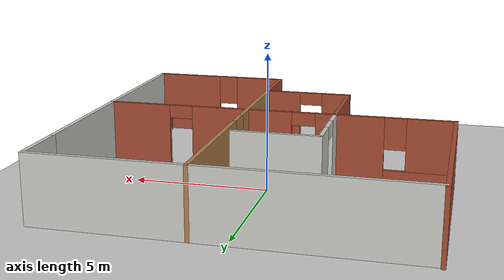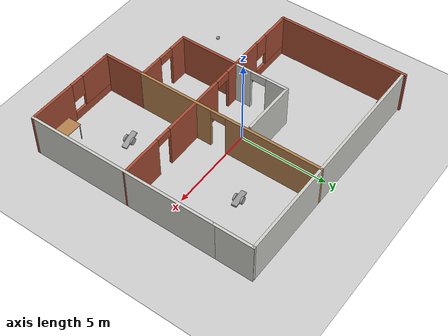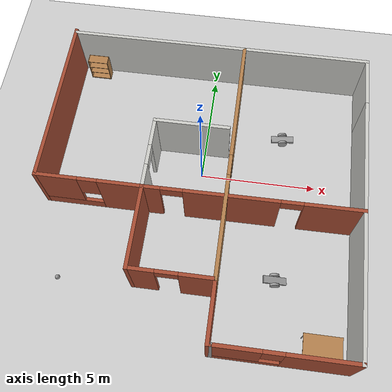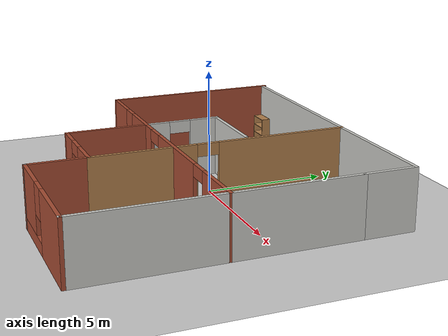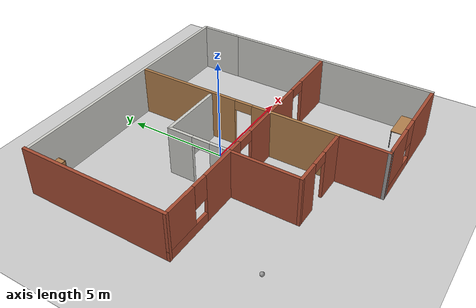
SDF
<sdf version="1.6">
 <world name="default">
  <plugin name="hello" filename="libhello.so"/>
  <light name="sun" type="directional">
   <pose>0 0 10 0 -0 0</pose>
   <diffuse>0.8 0.8 0.8 1</diffuse>
   <specular>0.2 0.2 0.2 1</specular>
   <attenuation>
    <range>1000</range>
    <constant>0.9</constant>
    <linear>0.01</linear>
    <quadratic>0.001</quadratic>
   </attenuation>
   <direction>-0.5 0.1 -0.9</direction>
  </light>
  <model name="ground_plane">
   <static>1</static>
   <link name="link">
    <collision name="collision">
     <geometry><plane><normal>0 0 1</normal><size>100 100</size></plane></geometry>
     <surface>
      <contact><collide_bitmask>65535</collide_bitmask></contact>
      <friction><ode><mu>100</mu><mu2>50</mu2></ode></friction>
     </surface>
    </collision>
    <visual name="visual">
     <cast_shadows>0</cast_shadows>
     <geometry><plane><normal>0 0 1</normal><size>100 100</size></plane></geometry>
     <material>
      <script><uri>file://media/materials/scripts/gazebo.material</uri><name>Gazebo/Grey</name></script>
     </material>
    </visual>
   </link>
  </model>
  <gravity>0 0 -9.8</gravity>
  <magnetic_field>6e-06 2.3e-05 -4.2e-05</magnetic_field>
  <atmosphere type="adiabatic"/>
  <physics name="default_physics" default="0" type="ode">
   <max_step_size>0.001</max_step_size>
   <real_time_factor>1</real_time_factor>
   <real_time_update_rate>1000</real_time_update_rate>
  </physics>
  <scene><ambient>0.4 0.4 0.4 1</ambient><background>0.7 0.7 0.7 1</background><shadows>1</shadows></scene>
  <spherical_coordinates>
   <surface_model>EARTH_WGS84</surface_model>
   <latitude_deg>0</latitude_deg>
   <longitude_deg>0</longitude_deg>
   <elevation>0</elevation>
   <heading_deg>0</heading_deg>
  </spherical_coordinates>
  <model name="Building">
   <pose>0.114366 -1.10553 0 0 -0 0</pose>
   <link name="Wall_0">
    <collision name="Wall_0_Collision">
     <geometry><box><size>13.25 0.15 2.5</size></box></geometry>
     <pose>0 0 1.25 0 -0 0</pose>
    </collision>
    <visual name="Wall_0_Visual">
     <pose>0 0 1.25 0 -0 0</pose>
     <geometry><box><size>13.25 0.15 2.5</size></box></geometry>
     <material>
      <script><uri>file://media/materials/scripts/gazebo.material</uri><name>Gazebo/CeilingTiled</name></script>
      <ambient>0.435294 0.796078 0.67451 1</ambient>
     </material>
     <meta><layer>0</layer></meta>
    </visual>
    <pose>0.024727 6.425 0 0 -0 0</pose>
   </link>
   <link name="Wall_1">
    <collision name="Wall_1_Collision">
     <geometry><box><size>2.25 0.15 2.5</size></box></geometry>
     <pose>0 0 1.25 0 -0 0</pose>
    </collision>
    <visual name="Wall_1_Visual">
     <pose>0 0 1.25 0 -0 0</pose>
     <geometry><box><size>2.25 0.15 2.5</size></box></geometry>
     <material>
      <script><uri>file://media/materials/scripts/gazebo.material</uri><name>Gazebo/CeilingTiled</name></script>
      <ambient>0.760784 0.662745 0.627451 1</ambient>
     </material>
     <meta><layer>0</layer></meta>
    </visual>
    <pose>6.57473 5.375 0 0 0 -1.5708</pose>
   </link>
   <link name="Wall_11">
    <pose>2.17478 -0.799463 0 0 0 -3.13579</pose>
    <visual name="Wall_11_Visual_0">
     <pose>-3.24354 0 1.25 0 -0 0</pose>
     <geometry><box><size>2.46318 0.15 2.5</size></box></geometry>
     <material>
      <script><uri>file://media/materials/scripts/gazebo.material</uri><name>Gazebo/Bricks</name></script>
      <ambient>1 1 1 1</ambient>
     </material>
     <meta><layer>0</layer></meta>
    </visual>
    <collision name="Wall_11_Collision_0">
     <geometry><box><size>2.46318 0.15 2.5</size></box></geometry>
     <pose>-3.24354 0 1.25 0 -0 0</pose>
    </collision>
    <visual name="Wall_11_Visual_1">
     <pose>0.828788 0 1.25 0 -0 0</pose>
     <geometry><box><size>3.88147 0.15 2.5</size></box></geometry>
     <material>
      <script><uri>file://media/materials/scripts/gazebo.material</uri><name>Gazebo/Bricks</name></script>
      <ambient>1 1 1 1</ambient>
     </material>
     <meta><layer>0</layer></meta>
    </visual>
    <collision name="Wall_11_Collision_1">
     <geometry><box><size>3.88147 0.15 2.5</size></box></geometry>
     <pose>0.828788 0 1.25 0 -0 0</pose>
    </collision>
    <visual name="Wall_11_Visual_2">
     <pose>4.07233 0 1.25 0 -0 0</pose>
     <geometry><box><size>0.805607 0.15 2.5</size></box></geometry>
     <material>
      <script><uri>file://media/materials/scripts/gazebo.material</uri><name>Gazebo/Bricks</name></script>
      <ambient>1 1 1 1</ambient>
     </material>
     <meta><layer>0</layer></meta>
    </visual>
    <collision name="Wall_11_Collision_2">
     <geometry><box><size>0.805607 0.15 2.5</size></box></geometry>
     <pose>4.07233 0 1.25 0 -0 0</pose>
    </collision>
    <visual name="Wall_11_Visual_3">
     <pose>-1.56195 0 2.25 0 -0 0</pose>
     <geometry><box><size>0.9 0.15 0.5</size></box></geometry>
     <material>
      <script><uri>file://media/materials/scripts/gazebo.material</uri><name>Gazebo/Bricks</name></script>
      <ambient>1 1 1 1</ambient>
     </material>
     <meta><layer>0</layer></meta>
    </visual>
    <collision name="Wall_11_Collision_3">
     <geometry><box><size>0.9 0.15 0.5</size></box></geometry>
     <pose>-1.56195 0 2.25 0 -0 0</pose>
    </collision>
    <visual name="Wall_11_Visual_4">
     <pose>3.21952 0 2.25 0 -0 0</pose>
     <geometry><box><size>0.9 0.15 0.5</size></box></geometry>
     <material>
      <script><uri>file://media/materials/scripts/gazebo.material</uri><name>Gazebo/Bricks</name></script>
      <ambient>1 1 1 1</ambient>
     </material>
     <meta><layer>0</layer></meta>
    </visual>
    <collision name="Wall_11_Collision_4">
     <geometry><box><size>0.9 0.15 0.5</size></box></geometry>
     <pose>3.21952 0 2.25 0 -0 0</pose>
    </collision>
   </link>
   <link name="Wall_12">
    <pose>-2.22527 0.725 0 0 -0 1.5708</pose>
    <visual name="Wall_12_Visual_0">
     <pose>-1.09587 0 1.25 0 -0 0</pose>
     <geometry><box><size>1.05826 0.15 2.5</size></box></geometry>
     <material>
      <script><uri>file://media/materials/scripts/gazebo.material</uri><name>Gazebo/CeilingTiled</name></script>
      <ambient>1 1 1 1</ambient>
     </material>
     <meta><layer>0</layer></meta>
    </visual>
    <collision name="Wall_12_Collision_0">
     <geometry><box><size>1.05826 0.15 2.5</size></box></geometry>
     <pose>-1.09587 0 1.25 0 -0 0</pose>
    </collision>
    <visual name="Wall_12_Visual_1">
     <pose>0.979128 0 1.25 0 -0 0</pose>
     <geometry><box><size>1.29174 0.15 2.5</size></box></geometry>
     <material>
      <script><uri>file://media/materials/scripts/gazebo.material</uri><name>Gazebo/CeilingTiled</name></script>
      <ambient>1 1 1 1</ambient>
     </material>
     <meta><layer>0</layer></meta>
    </visual>
    <collision name="Wall_12_Collision_1">
     <geometry><box><size>1.29174 0.15 2.5</size></box></geometry>
     <pose>0.979128 0 1.25 0 -0 0</pose>
    </collision>
    <visual name="Wall_12_Visual_2">
     <pose>-0.116744 0 2.25 0 -0 0</pose>
     <geometry><box><size>0.9 0.15 0.5</size></box></geometry>
     <material>
      <script><uri>file://media/materials/scripts/gazebo.material</uri><name>Gazebo/CeilingTiled</name></script>
      <ambient>1 1 1 1</ambient>
     </material>
     <meta><layer>0</layer></meta>
    </visual>
    <collision name="Wall_12_Collision_2">
     <geometry><box><size>0.9 0.15 0.5</size></box></geometry>
     <pose>-0.116744 0 2.25 0 -0 0</pose>
    </collision>
   </link>
   <link name="Wall_13">
    <collision name="Wall_13_Collision">
     <geometry><box><size>3.25 0.15 2.5</size></box></geometry>
     <pose>0 0 1.25 0 -0 0</pose>
    </collision>
    <visual name="Wall_13_Visual">
     <pose>0 0 1.25 0 -0 0</pose>
     <geometry><box><size>3.25 0.15 2.5</size></box></geometry>
     <material>
      <script><uri>file://media/materials/scripts/gazebo.material</uri><name>Gazebo/CeilingTiled</name></script>
      <ambient>1 1 1 1</ambient>
     </material>
     <meta><layer>0</layer></meta>
    </visual>
    <pose>-0.675274 2.275 0 0 -0 0</pose>
   </link>
   <link name="Wall_15">
    <pose>1.12473 1.125 0 0 -0 1.5708</pose>
    <visual name="Wall_15_Visual_0">
     <pose>-3.19342 0 1.25 0 -0 0</pose>
     <geometry><box><size>4.36315 0.15 2.5</size></box></geometry>
     <material>
      <script><uri>file://media/materials/scripts/gazebo.material</uri><name>Gazebo/Wood</name></script>
      <ambient>1 1 1 1</ambient>
     </material>
     <meta><layer>0</layer></meta>
    </visual>
    <collision name="Wall_15_Collision_0">
     <geometry><box><size>4.36315 0.15 2.5</size></box></geometry>
     <pose>-3.19342 0 1.25 0 -0 0</pose>
    </collision>
    <visual name="Wall_15_Visual_1">
     <pose>2.63158 0 1.25 0 -0 0</pose>
     <geometry><box><size>5.48685 0.15 2.5</size></box></geometry>
     <material>
      <script><uri>file://media/materials/scripts/gazebo.material</uri><name>Gazebo/Wood</name></script>
      <ambient>1 1 1 1</ambient>
     </material>
     <meta><layer>0</layer></meta>
    </visual>
    <collision name="Wall_15_Collision_1">
     <geometry><box><size>5.48685 0.15 2.5</size></box></geometry>
     <pose>2.63158 0 1.25 0 -0 0</pose>
    </collision>
    <visual name="Wall_15_Visual_2">
     <pose>-0.561846 0 2.25 0 -0 0</pose>
     <geometry><box><size>0.9 0.15 0.5</size></box></geometry>
     <material>
      <script><uri>file://media/materials/scripts/gazebo.material</uri><name>Gazebo/Wood</name></script>
      <ambient>1 1 1 1</ambient>
     </material>
     <meta><layer>0</layer></meta>
    </visual>
    <collision name="Wall_15_Collision_2">
     <geometry><box><size>0.9 0.15 0.5</size></box></geometry>
     <pose>-0.561846 0 2.25 0 -0 0</pose>
    </collision>
   </link>
   <link name="Wall_2">
    <collision name="Wall_2_Collision">
     <geometry><box><size>11 0.15 2.5</size></box></geometry>
     <pose>0 0 1.25 0 -0 0</pose>
    </collision>
    <visual name="Wall_2_Visual">
     <pose>0 0 1.25 0 -0 0</pose>
     <geometry><box><size>11 0.15 2.5</size></box></geometry>
     <material>
      <script><uri>file://media/materials/scripts/gazebo.material</uri><name>Gazebo/CeilingTiled</name></script>
      <ambient>0.760784 0.662745 0.627451 1</ambient>
     </material>
     <meta><layer>0</layer></meta>
    </visual>
    <pose>6.57473 -1.1 0 0 0 -1.5708</pose>
   </link>
   <link name="Wall_3">
    <pose>3.89973 -6.525 0 0 -0 3.14159</pose>
    <visual name="Wall_3_Visual_0">
     <pose>-1.35798 0 1.25 0 -0 0</pose>
     <geometry><box><size>2.78404 0.15 2.5</size></box></geometry>
     <material>
      <script><uri>file://media/materials/scripts/gazebo.material</uri><name>Gazebo/Bricks</name></script>
      <ambient>1 1 1 1</ambient>
     </material>
     <meta><layer>0</layer></meta>
    </visual>
    <collision name="Wall_3_Collision_0">
     <geometry><box><size>2.78404 0.15 2.5</size></box></geometry>
     <pose>-1.35798 0 1.25 0 -0 0</pose>
    </collision>
    <visual name="Wall_3_Visual_1">
     <pose>1.39202 0 0.25 0 -0 0</pose>
     <geometry><box><size>2.71596 0.15 0.5</size></box></geometry>
     <material>
      <script><uri>file://media/materials/scripts/gazebo.material</uri><name>Gazebo/Bricks</name></script>
      <ambient>1 1 1 1</ambient>
     </material>
     <meta><layer>0</layer></meta>
    </visual>
    <collision name="Wall_3_Collision_1">
     <geometry><box><size>2.71596 0.15 0.5</size></box></geometry>
     <pose>1.39202 0 0.25 0 -0 0</pose>
    </collision>
    <visual name="Wall_3_Visual_2">
     <pose>1.79202 0 1.5 0 -0 0</pose>
     <geometry><box><size>1.91596 0.15 2</size></box></geometry>
     <material>
      <script><uri>file://media/materials/scripts/gazebo.material</uri><name>Gazebo/Bricks</name></script>
      <ambient>1 1 1 1</ambient>
     </material>
     <meta><layer>0</layer></meta>
    </visual>
    <collision name="Wall_3_Collision_2">
     <geometry><box><size>1.91596 0.15 2</size></box></geometry>
     <pose>1.79202 0 1.5 0 -0 0</pose>
    </collision>
    <visual name="Wall_3_Visual_3">
     <pose>0.434036 0 1.9 0 -0 0</pose>
     <geometry><box><size>0.8 0.15 1.2</size></box></geometry>
     <material>
      <script><uri>file://media/materials/scripts/gazebo.material</uri><name>Gazebo/Bricks</name></script>
      <ambient>1 1 1 1</ambient>
     </material>
     <meta><layer>0</layer></meta>
    </visual>
    <collision name="Wall_3_Collision_3">
     <geometry><box><size>0.8 0.15 1.2</size></box></geometry>
     <pose>0.434036 0 1.9 0 -0 0</pose>
    </collision>
   </link>
   <link name="Wall_4">
    <collision name="Wall_4_Collision">
     <geometry><box><size>0.25 0.15 2.5</size></box></geometry>
     <pose>0 0 1.25 0 -0 0</pose>
    </collision>
    <visual name="Wall_4_Visual">
     <pose>0 0 1.25 0 -0 0</pose>
     <geometry><box><size>0.25 0.15 2.5</size></box></geometry>
     <material>
      <script><uri>file://media/materials/scripts/gazebo.material</uri><name>Gazebo/Grey</name></script>
      <ambient>1 1 1 1</ambient>
     </material>
     <meta><layer>0</layer></meta>
    </visual>
    <pose>1.17473 -6.525 0 0 -0 3.14159</pose>
   </link>
   <link name="Wall_5">
    <collision name="Wall_5_Collision">
     <geometry><box><size>2.5 0.15 2.5</size></box></geometry>
     <pose>0 0 1.25 0 -0 0</pose>
    </collision>
    <visual name="Wall_5_Visual">
     <pose>0 0 1.25 0 -0 0</pose>
     <geometry><box><size>2.5 0.15 2.5</size></box></geometry>
     <material>
      <script><uri>file://media/materials/scripts/gazebo.material</uri><name>Gazebo/Bricks</name></script>
      <ambient>1 1 1 1</ambient>
     </material>
     <meta><layer>0</layer></meta>
    </visual>
    <pose>1.12473 -5.35 0 0 -0 1.5708</pose>
   </link>
   <link name="Wall_6">
    <pose>-0.550274 -4.175 0 0 -0 3.14159</pose>
    <visual name="Wall_6_Visual_0">
     <pose>-1.02198 0 1.25 0 -0 0</pose>
     <geometry><box><size>1.45604 0.15 2.5</size></box></geometry>
     <material>
      <script><uri>file://media/materials/scripts/gazebo.material</uri><name>Gazebo/Bricks</name></script>
      <ambient>1 1 1 1</ambient>
     </material>
     <meta><layer>0</layer></meta>
    </visual>
    <collision name="Wall_6_Collision_0">
     <geometry><box><size>1.45604 0.15 2.5</size></box></geometry>
     <pose>-1.02198 0 1.25 0 -0 0</pose>
    </collision>
    <visual name="Wall_6_Visual_1">
     <pose>1.17802 0 1.25 0 -0 0</pose>
     <geometry><box><size>1.14396 0.15 2.5</size></box></geometry>
     <material>
      <script><uri>file://media/materials/scripts/gazebo.material</uri><name>Gazebo/Bricks</name></script>
      <ambient>1 1 1 1</ambient>
     </material>
     <meta><layer>0</layer></meta>
    </visual>
    <collision name="Wall_6_Collision_1">
     <geometry><box><size>1.14396 0.15 2.5</size></box></geometry>
     <pose>1.17802 0 1.25 0 -0 0</pose>
    </collision>
    <visual name="Wall_6_Visual_2">
     <pose>0.156044 0 2.25 0 -0 0</pose>
     <geometry><box><size>0.9 0.15 0.5</size></box></geometry>
     <material>
      <script><uri>file://media/materials/scripts/gazebo.material</uri><name>Gazebo/Bricks</name></script>
      <ambient>1 1 1 1</ambient>
     </material>
     <meta><layer>0</layer></meta>
    </visual>
    <collision name="Wall_6_Collision_2">
     <geometry><box><size>0.9 0.15 0.5</size></box></geometry>
     <pose>0.156044 0 2.25 0 -0 0</pose>
    </collision>
   </link>
   <link name="Wall_7">
    <collision name="Wall_7_Collision">
     <geometry><box><size>3.5 0.15 2.5</size></box></geometry>
     <pose>0 0 1.25 0 -0 0</pose>
    </collision>
    <visual name="Wall_7_Visual">
     <pose>0 0 1.25 0 -0 0</pose>
     <geometry><box><size>3.5 0.15 2.5</size></box></geometry>
     <material>
      <script><uri>file://media/materials/scripts/gazebo.material</uri><name>Gazebo/Bricks</name></script>
      <ambient>1 1 1 1</ambient>
     </material>
     <meta><layer>0</layer></meta>
    </visual>
    <pose>-2.22527 -2.5 0 0 -0 1.5708</pose>
   </link>
   <link name="Wall_8">
    <pose>-4.40027 -0.825 0 0 -0 3.14159</pose>
    <visual name="Wall_8_Visual_0">
     <pose>-1.30021 0 1.25 0 -0 0</pose>
     <geometry><box><size>1.89958 0.15 2.5</size></box></geometry>
     <material>
      <script><uri>file://media/materials/scripts/gazebo.material</uri><name>Gazebo/Bricks</name></script>
      <ambient>1 1 1 1</ambient>
     </material>
     <meta><layer>0</layer></meta>
    </visual>
    <collision name="Wall_8_Collision_0">
     <geometry><box><size>1.89958 0.15 2.5</size></box></geometry>
     <pose>-1.30021 0 1.25 0 -0 0</pose>
    </collision>
    <visual name="Wall_8_Visual_1">
     <pose>0.949788 0 0.25 0 -0 0</pose>
     <geometry><box><size>2.60042 0.15 0.5</size></box></geometry>
     <material>
      <script><uri>file://media/materials/scripts/gazebo.material</uri><name>Gazebo/Bricks</name></script>
      <ambient>1 1 1 1</ambient>
     </material>
     <meta><layer>0</layer></meta>
    </visual>
    <collision name="Wall_8_Collision_1">
     <geometry><box><size>2.60042 0.15 0.5</size></box></geometry>
     <pose>0.949788 0 0.25 0 -0 0</pose>
    </collision>
    <visual name="Wall_8_Visual_2">
     <pose>1.34979 0 1.5 0 -0 0</pose>
     <geometry><box><size>1.80042 0.15 2</size></box></geometry>
     <material>
      <script><uri>file://media/materials/scripts/gazebo.material</uri><name>Gazebo/Bricks</name></script>
      <ambient>1 1 1 1</ambient>
     </material>
     <meta><layer>0</layer></meta>
    </visual>
    <collision name="Wall_8_Collision_2">
     <geometry><box><size>1.80042 0.15 2</size></box></geometry>
     <pose>1.34979 0 1.5 0 -0 0</pose>
    </collision>
    <visual name="Wall_8_Visual_3">
     <pose>0.049577 0 1.9 0 -0 0</pose>
     <geometry><box><size>0.8 0.15 1.2</size></box></geometry>
     <material>
      <script><uri>file://media/materials/scripts/gazebo.material</uri><name>Gazebo/Bricks</name></script>
      <ambient>1 1 1 1</ambient>
     </material>
     <meta><layer>0</layer></meta>
    </visual>
    <collision name="Wall_8_Collision_3">
     <geometry><box><size>0.8 0.15 1.2</size></box></geometry>
     <pose>0.049577 0 1.9 0 -0 0</pose>
    </collision>
   </link>
   <link name="Wall_9">
    <collision name="Wall_9_Collision">
     <geometry><box><size>7.5 0.15 2.5</size></box></geometry>
     <pose>0 0 1.25 0 -0 0</pose>
    </collision>
    <visual name="Wall_9_Visual">
     <pose>0 0 1.25 0 -0 0</pose>
     <geometry><box><size>7.5 0.15 2.5</size></box></geometry>
     <material>
      <script><uri>file://media/materials/scripts/gazebo.material</uri><name>Gazebo/Bricks</name></script>
      <ambient>1 1 1 1</ambient>
     </material>
     <meta><layer>0</layer></meta>
    </visual>
    <pose>-6.57527 2.85 0 0 -0 1.5708</pose>
   </link>
   <static>1</static>
  </model>
  <model name="MobileRobot">
   <link name="link_0">
    <pose>0 0 0 0 -0 1.5707</pose>
    <inertial>
     <mass>1</mass>
     <inertia>
      <ixx>0.166667</ixx>
      <ixy>0</ixy>
      <ixz>0</ixz>
      <iyy>0.166667</iyy>
      <iyz>0</iyz>
      <izz>0.166667</izz>
     </inertia>
    </inertial>
    <visual name="visual">
     <geometry><box><size>0.3 1 0.1</size></box></geometry>
     <material>
      <lighting>1</lighting>
      <script><uri>file://media/materials/scripts/gazebo.material</uri><name>Gazebo/Grey</name></script>
      <shader type="pixel"><normal_map>__default__</normal_map></shader>
      <ambient>0.3 0.3 0.3 1</ambient>
      <diffuse>0.7 0.7 0.7 1</diffuse>
      <specular>0.01 0.01 0.01 1</specular>
      <emissive>0 0 0 1</emissive>
     </material>
    </visual>
    <collision name="collision">
     <geometry><box><size>0.3 1 0.1</size></box></geometry>
     <surface>
      <friction>
       <ode><mu>1</mu><mu2>1</mu2><fdir1>0 0 0</fdir1><slip1>0</slip1><slip2>0</slip2></ode>
       <torsional>
        <coefficient>1</coefficient>
        <patch_radius>0</patch_radius>
        <surface_radius>0</surface_radius>
        <use_patch_radius>1</use_patch_radius>
        <ode><slip>0</slip></ode>
       </torsional>
      </friction>
      <bounce><restitution_coefficient>0</restitution_coefficient><threshold>1e+06</threshold></bounce>
      <contact>
       <collide_without_contact>0</collide_without_contact>
       <collide_without_contact_bitmask>1</collide_without_contact_bitmask>
       <collide_bitmask>1</collide_bitmask>
       <ode>
        <soft_cfm>0</soft_cfm>
        <soft_erp>0.2</soft_erp>
        <kp>1e+13</kp>
        <kd>1</kd>
        <max_vel>0.01</max_vel>
        <min_depth>0</min_depth>
       </ode>
       <bullet>
        <split_impulse>1</split_impulse>
        <split_impulse_penetration_threshold>-0.01</split_impulse_penetration_threshold>
        <soft_cfm>0</soft_cfm>
        <soft_erp>0.2</soft_erp>
        <kp>1e+13</kp>
        <kd>1</kd>
       </bullet>
      </contact>
     </surface>
    </collision>
   </link>
   <link name="link_1">
    <pose>0 -0.200068 0 1.5707 -0 0</pose>
    <inertial>
     <mass>1</mass>
     <inertia><ixx>0.145833</ixx><ixy>0</ixy><ixz>0</ixz><iyy>0.145833</iyy><iyz>0</iyz><izz>0.125</izz></inertia>
    </inertial>
    <visual name="visual">
     <geometry><cylinder><radius>0.2</radius><length>0.1</length></cylinder></geometry>
     <material>
      <lighting>1</lighting>
      <script><uri>file://media/materials/scripts/gazebo.material</uri><name>Gazebo/Grey</name></script>
      <shader type="pixel"><normal_map>__default__</normal_map></shader>
      <ambient>0.3 0.3 0.3 1</ambient>
      <diffuse>0.7 0.7 0.7 1</diffuse>
      <specular>0.01 0.01 0.01 1</specular>
      <emissive>0 0 0 1</emissive>
     </material>
    </visual>
    <collision name="collision">
     <geometry><cylinder><radius>0.2</radius><length>0.1</length></cylinder></geometry>
     <surface>
      <friction>
       <ode><mu>1</mu><mu2>1</mu2><fdir1>0 0 0</fdir1><slip1>0</slip1><slip2>0</slip2></ode>
       <torsional>
        <coefficient>1</coefficient>
        <patch_radius>0</patch_radius>
        <surface_radius>0</surface_radius>
        <use_patch_radius>1</use_patch_radius>
        <ode><slip>0</slip></ode>
       </torsional>
      </friction>
      <bounce><restitution_coefficient>0</restitution_coefficient><threshold>1e+06</threshold></bounce>
      <contact>
       <collide_without_contact>0</collide_without_contact>
       <collide_without_contact_bitmask>1</collide_without_contact_bitmask>
       <collide_bitmask>1</collide_bitmask>
       <ode>
        <soft_cfm>0</soft_cfm>
        <soft_erp>0.2</soft_erp>
        <kp>1e+13</kp>
        <kd>1</kd>
        <max_vel>0.01</max_vel>
        <min_depth>0</min_depth>
       </ode>
       <bullet>
        <split_impulse>1</split_impulse>
        <split_impulse_penetration_threshold>-0.01</split_impulse_penetration_threshold>
        <soft_cfm>0</soft_cfm>
        <soft_erp>0.2</soft_erp>
        <kp>1e+13</kp>
        <kd>1</kd>
       </bullet>
      </contact>
     </surface>
    </collision>
   </link>
   <link name="link_1_clone">
    <pose>0 0.200068 0 1.5707 -0 0</pose>
    <inertial>
     <mass>1</mass>
     <inertia><ixx>0.145833</ixx><ixy>0</ixy><ixz>0</ixz><iyy>0.145833</iyy><iyz>0</iyz><izz>0.125</izz></inertia>
    </inertial>
    <visual name="visual">
     <geometry><cylinder><radius>0.2</radius><length>0.1</length></cylinder></geometry>
     <material>
      <lighting>1</lighting>
      <script><uri>file://media/materials/scripts/gazebo.material</uri><name>Gazebo/Grey</name></script>
      <shader type="pixel"><normal_map>__default__</normal_map></shader>
      <ambient>0.3 0.3 0.3 1</ambient>
      <diffuse>0.7 0.7 0.7 1</diffuse>
      <specular>0.01 0.01 0.01 1</specular>
      <emissive>0 0 0 1</emissive>
     </material>
    </visual>
    <collision name="collision">
     <geometry><cylinder><radius>0.2</radius><length>0.1</length></cylinder></geometry>
     <surface>
      <friction>
       <ode><mu>1</mu><mu2>1</mu2><fdir1>0 0 0</fdir1><slip1>0</slip1><slip2>0</slip2></ode>
       <torsional>
        <coefficient>1</coefficient>
        <patch_radius>0</patch_radius>
        <surface_radius>0</surface_radius>
        <use_patch_radius>1</use_patch_radius>
        <ode><slip>0</slip></ode>
       </torsional>
      </friction>
      <bounce><restitution_coefficient>0</restitution_coefficient><threshold>1e+06</threshold></bounce>
      <contact>
       <collide_without_contact>0</collide_without_contact>
       <collide_without_contact_bitmask>1</collide_without_contact_bitmask>
       <collide_bitmask>1</collide_bitmask>
       <ode>
        <soft_cfm>0</soft_cfm>
        <soft_erp>0.2</soft_erp>
        <kp>1e+13</kp>
        <kd>1</kd>
        <max_vel>0.01</max_vel>
        <min_depth>0</min_depth>
       </ode>
       <bullet>
        <split_impulse>1</split_impulse>
        <split_impulse_penetration_threshold>-0.01</split_impulse_penetration_threshold>
        <soft_cfm>0</soft_cfm>
        <soft_erp>0.2</soft_erp>
        <kp>1e+13</kp>
        <kd>1</kd>
       </bullet>
      </contact>
     </surface>
    </collision>
   </link>
   <joint name="link_0_JOINT_1" type="revolute">
    <parent>link_0</parent>
    <child>link_1</child>
    <axis>
     <xyz>0 0 1</xyz>
     <use_parent_model_frame>0</use_parent_model_frame>
     <limit>
      <lower>-1.79769e+308</lower>
      <upper>1.79769e+308</upper>
      <effort>-1</effort>
      <velocity>-1</velocity>
     </limit>
     <dynamics>
      <spring_reference>0</spring_reference>
      <spring_stiffness>0</spring_stiffness>
      <damping>0</damping>
     </dynamics>
    </axis>
    <physics>
     <ode><limit><cfm>0</cfm><erp>0.2</erp></limit><suspension><cfm>0</cfm><erp>0.2</erp></suspension></ode>
    </physics>
   </joint>
   <joint name="link_0_JOINT_2" type="revolute">
    <parent>link_0</parent>
    <child>link_1_clone</child>
    <axis>
     <xyz>0 0 1</xyz>
     <use_parent_model_frame>0</use_parent_model_frame>
     <limit>
      <lower>-1.79769e+308</lower>
      <upper>1.79769e+308</upper>
      <effort>-1</effort>
      <velocity>-1</velocity>
     </limit>
     <dynamics>
      <spring_reference>0</spring_reference>
      <spring_stiffness>0</spring_stiffness>
      <damping>0</damping>
     </dynamics>
    </axis>
    <physics>
     <ode><limit><cfm>0</cfm><erp>0.2</erp></limit><suspension><cfm>0</cfm><erp>0.2</erp></suspension></ode>
    </physics>
   </joint>
   <static>0</static>
   <pose>3.58375 -4.40143 0.199999 5e-06 0.288304 0.085352</pose>
  </model>
  <model name="MobileRobot_0">
   <link name="link_0">
    <pose>0 0 0 0 -0 1.5707</pose>
    <inertial>
     <mass>1</mass>
     <inertia>
      <ixx>0.166667</ixx>
      <ixy>0</ixy>
      <ixz>0</ixz>
      <iyy>0.166667</iyy>
      <iyz>0</iyz>
      <izz>0.166667</izz>
     </inertia>
    </inertial>
    <visual name="visual">
     <geometry><box><size>0.3 1 0.1</size></box></geometry>
     <material>
      <lighting>1</lighting>
      <script><uri>file://media/materials/scripts/gazebo.material</uri><name>Gazebo/Grey</name></script>
      <shader type="pixel"><normal_map>__default__</normal_map></shader>
      <ambient>0.3 0.3 0.3 1</ambient>
      <diffuse>0.7 0.7 0.7 1</diffuse>
      <specular>0.01 0.01 0.01 1</specular>
      <emissive>0 0 0 1</emissive>
     </material>
    </visual>
    <collision name="collision">
     <geometry><box><size>0.3 1 0.1</size></box></geometry>
     <surface>
      <friction>
       <ode><mu>1</mu><mu2>1</mu2><fdir1>0 0 0</fdir1><slip1>0</slip1><slip2>0</slip2></ode>
       <torsional>
        <coefficient>1</coefficient>
        <patch_radius>0</patch_radius>
        <surface_radius>0</surface_radius>
        <use_patch_radius>1</use_patch_radius>
        <ode><slip>0</slip></ode>
       </torsional>
      </friction>
      <bounce><restitution_coefficient>0</restitution_coefficient><threshold>1e+06</threshold></bounce>
      <contact>
       <collide_without_contact>0</collide_without_contact>
       <collide_without_contact_bitmask>1</collide_without_contact_bitmask>
       <collide_bitmask>1</collide_bitmask>
       <ode>
        <soft_cfm>0</soft_cfm>
        <soft_erp>0.2</soft_erp>
        <kp>1e+13</kp>
        <kd>1</kd>
        <max_vel>0.01</max_vel>
        <min_depth>0</min_depth>
       </ode>
       <bullet>
        <split_impulse>1</split_impulse>
        <split_impulse_penetration_threshold>-0.01</split_impulse_penetration_threshold>
        <soft_cfm>0</soft_cfm>
        <soft_erp>0.2</soft_erp>
        <kp>1e+13</kp>
        <kd>1</kd>
       </bullet>
      </contact>
     </surface>
    </collision>
   </link>
   <link name="link_1">
    <pose>0 -0.200068 0 1.5707 -0 0</pose>
    <inertial>
     <mass>1</mass>
     <inertia><ixx>0.145833</ixx><ixy>0</ixy><ixz>0</ixz><iyy>0.145833</iyy><iyz>0</iyz><izz>0.125</izz></inertia>
    </inertial>
    <visual name="visual">
     <geometry><cylinder><radius>0.2</radius><length>0.1</length></cylinder></geometry>
     <material>
      <lighting>1</lighting>
      <script><uri>file://media/materials/scripts/gazebo.material</uri><name>Gazebo/Grey</name></script>
      <shader type="pixel"><normal_map>__default__</normal_map></shader>
      <ambient>0.3 0.3 0.3 1</ambient>
      <diffuse>0.7 0.7 0.7 1</diffuse>
      <specular>0.01 0.01 0.01 1</specular>
      <emissive>0 0 0 1</emissive>
     </material>
    </visual>
    <collision name="collision">
     <geometry><cylinder><radius>0.2</radius><length>0.1</length></cylinder></geometry>
     <surface>
      <friction>
       <ode><mu>1</mu><mu2>1</mu2><fdir1>0 0 0</fdir1><slip1>0</slip1><slip2>0</slip2></ode>
       <torsional>
        <coefficient>1</coefficient>
        <patch_radius>0</patch_radius>
        <surface_radius>0</surface_radius>
        <use_patch_radius>1</use_patch_radius>
        <ode><slip>0</slip></ode>
       </torsional>
      </friction>
      <bounce><restitution_coefficient>0</restitution_coefficient><threshold>1e+06</threshold></bounce>
      <contact>
       <collide_without_contact>0</collide_without_contact>
       <collide_without_contact_bitmask>1</collide_without_contact_bitmask>
       <collide_bitmask>1</collide_bitmask>
       <ode>
        <soft_cfm>0</soft_cfm>
        <soft_erp>0.2</soft_erp>
        <kp>1e+13</kp>
        <kd>1</kd>
        <max_vel>0.01</max_vel>
        <min_depth>0</min_depth>
       </ode>
       <bullet>
        <split_impulse>1</split_impulse>
        <split_impulse_penetration_threshold>-0.01</split_impulse_penetration_threshold>
        <soft_cfm>0</soft_cfm>
        <soft_erp>0.2</soft_erp>
        <kp>1e+13</kp>
        <kd>1</kd>
       </bullet>
      </contact>
     </surface>
    </collision>
   </link>
   <link name="link_1_clone">
    <pose>0 0.200068 0 1.5707 -0 0</pose>
    <inertial>
     <mass>1</mass>
     <inertia><ixx>0.145833</ixx><ixy>0</ixy><ixz>0</ixz><iyy>0.145833</iyy><iyz>0</iyz><izz>0.125</izz></inertia>
    </inertial>
    <visual name="visual">
     <geometry><cylinder><radius>0.2</radius><length>0.1</length></cylinder></geometry>
     <material>
      <lighting>1</lighting>
      <script><uri>file://media/materials/scripts/gazebo.material</uri><name>Gazebo/Grey</name></script>
      <shader type="pixel"><normal_map>__default__</normal_map></shader>
      <ambient>0.3 0.3 0.3 1</ambient>
      <diffuse>0.7 0.7 0.7 1</diffuse>
      <specular>0.01 0.01 0.01 1</specular>
      <emissive>0 0 0 1</emissive>
     </material>
    </visual>
    <collision name="collision">
     <geometry><cylinder><radius>0.2</radius><length>0.1</length></cylinder></geometry>
     <surface>
      <friction>
       <ode><mu>1</mu><mu2>1</mu2><fdir1>0 0 0</fdir1><slip1>0</slip1><slip2>0</slip2></ode>
       <torsional>
        <coefficient>1</coefficient>
        <patch_radius>0</patch_radius>
        <surface_radius>0</surface_radius>
        <use_patch_radius>1</use_patch_radius>
        <ode><slip>0</slip></ode>
       </torsional>
      </friction>
      <bounce><restitution_coefficient>0</restitution_coefficient><threshold>1e+06</threshold></bounce>
      <contact>
       <collide_without_contact>0</collide_without_contact>
       <collide_without_contact_bitmask>1</collide_without_contact_bitmask>
       <collide_bitmask>1</collide_bitmask>
       <ode>
        <soft_cfm>0</soft_cfm>
        <soft_erp>0.2</soft_erp>
        <kp>1e+13</kp>
        <kd>1</kd>
        <max_vel>0.01</max_vel>
        <min_depth>0</min_depth>
       </ode>
       <bullet>
        <split_impulse>1</split_impulse>
        <split_impulse_penetration_threshold>-0.01</split_impulse_penetration_threshold>
        <soft_cfm>0</soft_cfm>
        <soft_erp>0.2</soft_erp>
        <kp>1e+13</kp>
        <kd>1</kd>
       </bullet>
      </contact>
     </surface>
    </collision>
   </link>
   <joint name="link_0_JOINT_1" type="revolute">
    <parent>link_0</parent>
    <child>link_1</child>
    <axis>
     <xyz>0 0 1</xyz>
     <use_parent_model_frame>0</use_parent_model_frame>
     <limit>
      <lower>-1.79769e+308</lower>
      <upper>1.79769e+308</upper>
      <effort>-1</effort>
      <velocity>-1</velocity>
     </limit>
     <dynamics>
      <spring_reference>0</spring_reference>
      <spring_stiffness>0</spring_stiffness>
      <damping>0</damping>
     </dynamics>
    </axis>
    <physics>
     <ode><limit><cfm>0</cfm><erp>0.2</erp></limit><suspension><cfm>0</cfm><erp>0.2</erp></suspension></ode>
    </physics>
   </joint>
   <joint name="link_0_JOINT_2" type="revolute">
    <parent>link_0</parent>
    <child>link_1_clone</child>
    <axis>
     <xyz>0 0 1</xyz>
     <use_parent_model_frame>0</use_parent_model_frame>
     <limit>
      <lower>-1.79769e+308</lower>
      <upper>1.79769e+308</upper>
      <effort>-1</effort>
      <velocity>-1</velocity>
     </limit>
     <dynamics>
      <spring_reference>0</spring_reference>
      <spring_stiffness>0</spring_stiffness>
      <damping>0</damping>
     </dynamics>
    </axis>
    <physics>
     <ode><limit><cfm>0</cfm><erp>0.2</erp></limit><suspension><cfm>0</cfm><erp>0.2</erp></suspension></ode>
    </physics>
   </joint>
   <static>0</static>
   <pose>3.4152 2.24031 0.200006 7e-06 -0.011216 0.101805</pose>
  </model>
  <model name="bookshelf">
   <static>1</static>
   <link name="link">
    <inertial><mass>1</mass></inertial>
    <collision name="back">
     <pose>0 0.005 0.6 0 -0 0</pose>
     <geometry><box><size>0.9 0.01 1.2</size></box></geometry>
    </collision>
    <visual name="visual1">
     <pose>0 0.005 0.6 0 -0 0</pose>
     <geometry><box><size>0.9 0.01 1.2</size></box></geometry>
     <material>
      <script><uri>file://media/materials/scripts/gazebo.material</uri><name>Gazebo/Wood</name></script>
     </material>
    </visual>
    <collision name="left_side">
     <pose>0.45 -0.195 0.6 0 -0 0</pose>
     <geometry><box><size>0.02 0.4 1.2</size></box></geometry>
    </collision>
    <visual name="visual2">
     <pose>0.45 -0.195 0.6 0 -0 0</pose>
     <geometry><box><size>0.02 0.4 1.2</size></box></geometry>
     <material>
      <script><uri>file://media/materials/scripts/gazebo.material</uri><name>Gazebo/Wood</name></script>
     </material>
    </visual>
    <collision name="right_side">
     <pose>-0.45 -0.195 0.6 0 -0 0</pose>
     <geometry><box><size>0.02 0.4 1.2</size></box></geometry>
    </collision>
    <visual name="visual3">
     <pose>-0.45 -0.195 0.6 0 -0 0</pose>
     <geometry><box><size>0.02 0.4 1.2</size></box></geometry>
     <material>
      <script><uri>file://media/materials/scripts/gazebo.material</uri><name>Gazebo/Wood</name></script>
     </material>
    </visual>
    <collision name="bottom">
     <pose>0 -0.195 0.03 0 -0 0</pose>
     <geometry><box><size>0.88 0.4 0.06</size></box></geometry>
    </collision>
    <visual name="visual4">
     <pose>0 -0.195 0.03 0 -0 0</pose>
     <geometry><box><size>0.88 0.4 0.06</size></box></geometry>
     <material>
      <script><uri>file://media/materials/scripts/gazebo.material</uri><name>Gazebo/Wood</name></script>
     </material>
    </visual>
    <collision name="top">
     <pose>0 -0.195 1.19 0 -0 0</pose>
     <geometry><box><size>0.88 0.4 0.02</size></box></geometry>
    </collision>
    <visual name="visual5">
     <pose>0 -0.195 1.19 0 -0 0</pose>
     <geometry><box><size>0.88 0.4 0.02</size></box></geometry>
     <material>
      <script><uri>file://media/materials/scripts/gazebo.material</uri><name>Gazebo/Wood</name></script>
     </material>
    </visual>
    <collision name="low_shelf">
     <pose>0 -0.195 0.43 0 -0 0</pose>
     <geometry><box><size>0.88 0.4 0.02</size></box></geometry>
    </collision>
    <visual name="visual6">
     <pose>0 -0.195 0.43 0 -0 0</pose>
     <geometry><box><size>0.88 0.4 0.02</size></box></geometry>
     <material>
      <script><uri>file://media/materials/scripts/gazebo.material</uri><name>Gazebo/Wood</name></script>
     </material>
    </visual>
    <collision name="high_shelf">
     <pose>0 -0.195 0.8 0 -0 0</pose>
     <geometry><box><size>0.88 0.4 0.02</size></box></geometry>
    </collision>
    <visual name="visual7">
     <pose>0 -0.195 0.8 0 -0 0</pose>
     <geometry><box><size>0.88 0.4 0.02</size></box></geometry>
     <material>
      <script><uri>file://media/materials/scripts/gazebo.material</uri><name>Gazebo/Wood</name></script>
     </material>
    </visual>
   </link>
   <pose>-5.57127 5.10435 0 0 -0 0</pose>
  </model>
  <model name="table">
   <static>1</static>
   <link name="link">
    <collision name="surface">
     <pose>0 0 1 0 -0 0</pose>
     <geometry><box><size>1.5 0.8 0.03</size></box></geometry>
     <surface><friction><ode><mu>0.6</mu><mu2>0.6</mu2></ode></friction></surface>
    </collision>
    <visual name="visual1">
     <pose>0 0 1 0 -0 0</pose>
     <geometry><box><size>1.5 0.8 0.03</size></box></geometry>
     <material>
      <script><uri>file://media/materials/scripts/gazebo.material</uri><name>Gazebo/Wood</name></script>
     </material>
    </visual>
    <collision name="front_left_leg">
     <pose>0.68 0.38 0.5 0 -0 0</pose>
     <geometry><cylinder><radius>0.02</radius><length>1</length></cylinder></geometry>
    </collision>
    <visual name="front_left_leg">
     <pose>0.68 0.38 0.5 0 -0 0</pose>
     <geometry><cylinder><radius>0.02</radius><length>1</length></cylinder></geometry>
     <material>
      <script><uri>file://media/materials/scripts/gazebo.material</uri><name>Gazebo/Grey</name></script>
     </material>
    </visual>
    <collision name="front_right_leg">
     <pose>0.68 -0.38 0.5 0 -0 0</pose>
     <geometry><cylinder><radius>0.02</radius><length>1</length></cylinder></geometry>
    </collision>
    <visual name="front_right_leg">
     <pose>0.68 -0.38 0.5 0 -0 0</pose>
     <geometry><cylinder><radius>0.02</radius><length>1</length></cylinder></geometry>
     <material>
      <script><uri>file://media/materials/scripts/gazebo.material</uri><name>Gazebo/Grey</name></script>
     </material>
    </visual>
    <collision name="back_right_leg">
     <pose>-0.68 -0.38 0.5 0 -0 0</pose>
     <geometry><cylinder><radius>0.02</radius><length>1</length></cylinder></geometry>
    </collision>
    <visual name="back_right_leg">
     <pose>-0.68 -0.38 0.5 0 -0 0</pose>
     <geometry><cylinder><radius>0.02</radius><length>1</length></cylinder></geometry>
     <material>
      <script><uri>file://media/materials/scripts/gazebo.material</uri><name>Gazebo/Grey</name></script>
     </material>
    </visual>
    <collision name="back_left_leg">
     <pose>-0.68 0.38 0.5 0 -0 0</pose>
     <geometry><cylinder><radius>0.02</radius><length>1</length></cylinder></geometry>
    </collision>
    <visual name="back_left_leg">
     <pose>-0.68 0.38 0.5 0 -0 0</pose>
     <geometry><cylinder><radius>0.02</radius><length>1</length></cylinder></geometry>
     <material>
      <script><uri>file://media/materials/scripts/gazebo.material</uri><name>Gazebo/Grey</name></script>
     </material>
    </visual>
   </link>
   <pose>5.50242 -6.90734 0 0 -0 0</pose>
  </model>
  <model name="my_ball">
   <link name="link_0">
    <inertial>
     <mass>1</mass>
     <inertia><ixx>0.1</ixx><ixy>0</ixy><ixz>0</ixz><iyy>0.1</iyy><iyz>0</iyz><izz>0.1</izz></inertia>
    </inertial>
    <visual name="visual">
     <geometry><sphere><radius>0.1</radius></sphere></geometry>
     <material>
      <lighting>1</lighting>
      <script><uri>file://media/materials/scripts/gazebo.material</uri><name>Gazebo/Grey</name></script>
      <shader type="pixel"><normal_map>__default__</normal_map></shader>
      <ambient>1 1 1 1</ambient>
      <diffuse>1 1 1 1</diffuse>
      <specular>1 1 1 1</specular>
      <emissive>1 1 1 1</emissive>
     </material>
    </visual>
    <collision name="collision">
     <geometry><sphere><radius>0.1</radius></sphere></geometry>
     <surface>
      <friction>
       <ode><mu>1</mu><mu2>1</mu2><fdir1>0 0 0</fdir1><slip1>0</slip1><slip2>0</slip2></ode>
       <torsional>
        <coefficient>1</coefficient>
        <patch_radius>0</patch_radius>
        <surface_radius>0</surface_radius>
        <use_patch_radius>1</use_patch_radius>
        <ode><slip>0</slip></ode>
       </torsional>
      </friction>
      <bounce><restitution_coefficient>0</restitution_coefficient><threshold>1e+06</threshold></bounce>
      <contact>
       <collide_without_contact>0</collide_without_contact>
       <collide_without_contact_bitmask>1</collide_without_contact_bitmask>
       <collide_bitmask>1</collide_bitmask>
       <ode>
        <soft_cfm>0</soft_cfm>
        <soft_erp>0.2</soft_erp>
        <kp>1e+13</kp>
        <kd>1</kd>
        <max_vel>0.01</max_vel>
        <min_depth>0</min_depth>
       </ode>
       <bullet>
        <split_impulse>1</split_impulse>
        <split_impulse_penetration_threshold>-0.01</split_impulse_penetration_threshold>
        <soft_cfm>0</soft_cfm>
        <soft_erp>0.2</soft_erp>
        <kp>1e+13</kp>
        <kd>1</kd>
       </bullet>
      </contact>
     </surface>
    </collision>
   </link>
   <static>0</static>
   <pose>-5.2536 -5.36361 0.1 0 -0 0</pose>
  </model>
 </world>
</sdf>
